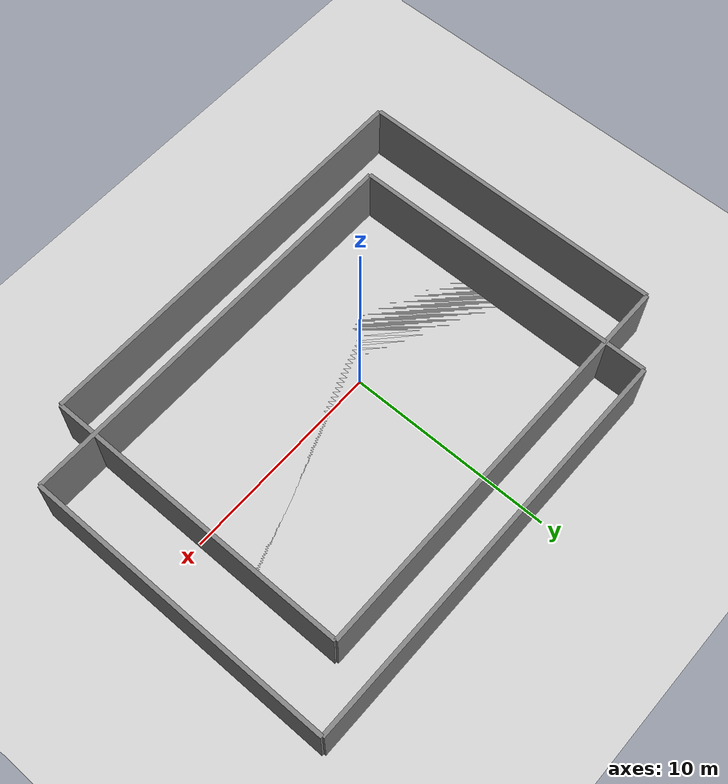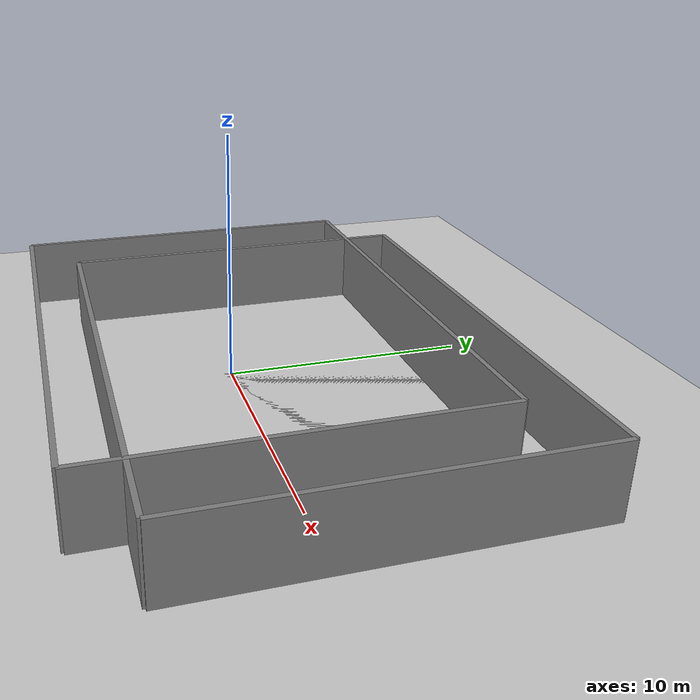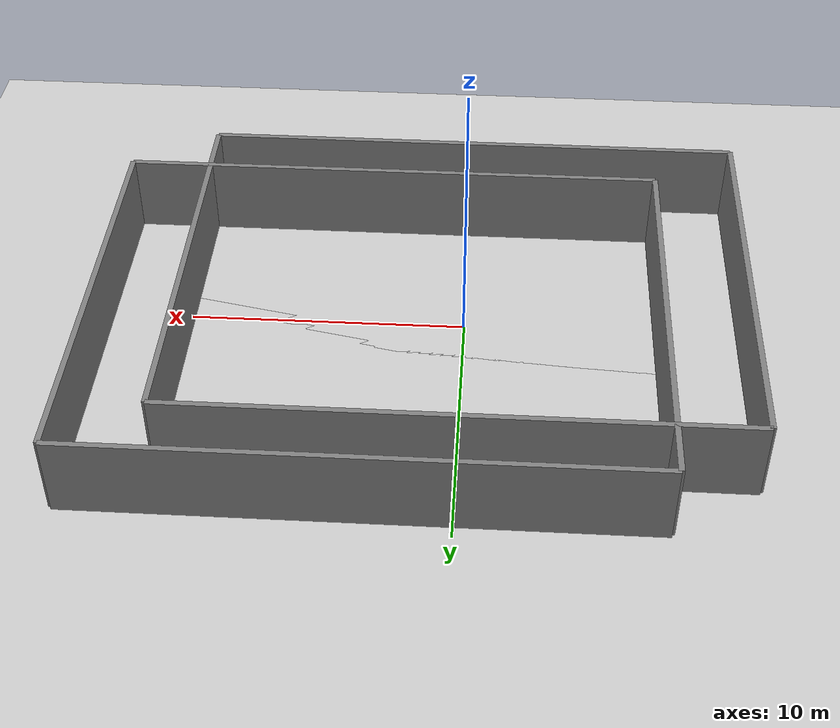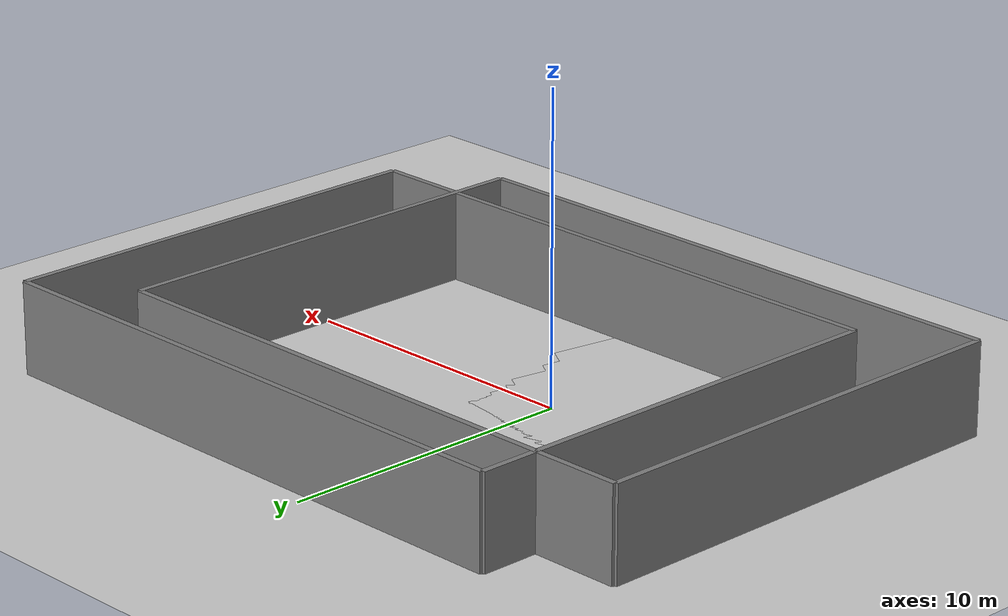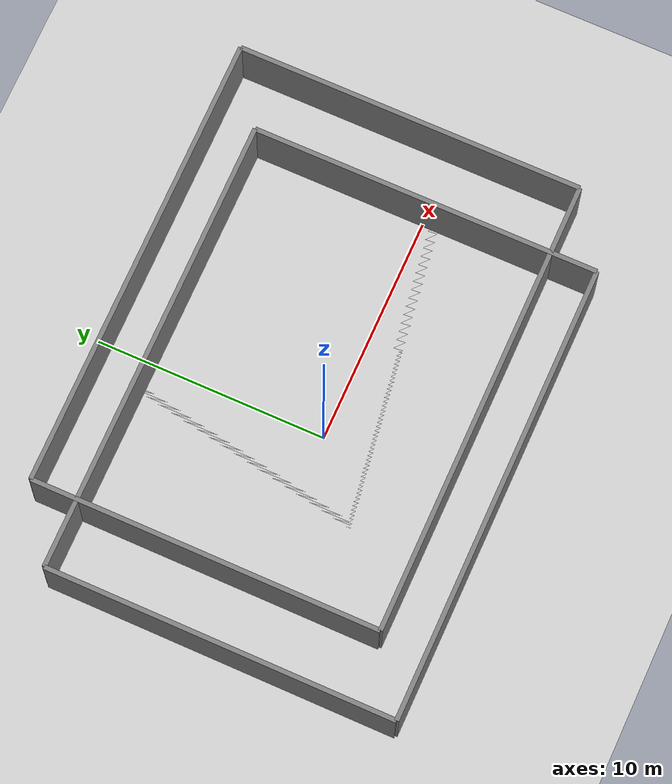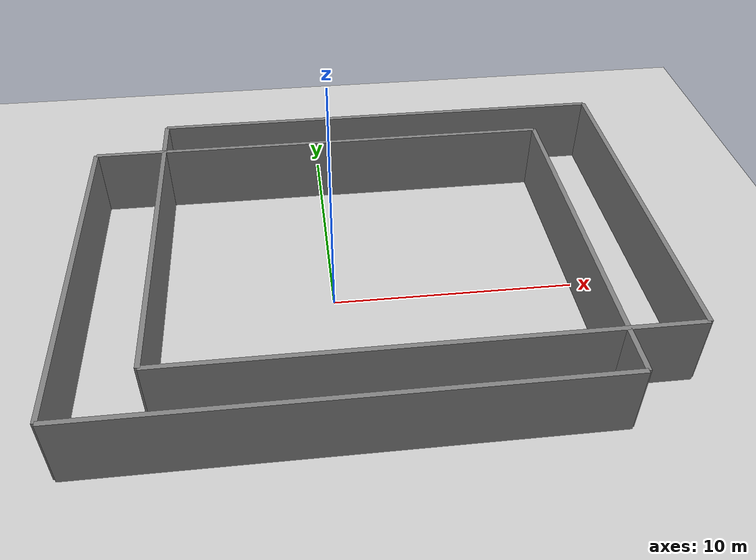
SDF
<?xml version="1.0" ?>
<sdf version="1.8">
  <world name="warehouse_world">
    <physics name="1ms" type="ignored">
      <max_step_size>0.001</max_step_size>
      <real_time_factor>1.0</real_time_factor>
    </physics>

    <plugin filename="libignition-gazebo-physics-system.so" name="ignition::gazebo::systems::Physics"></plugin>
    <plugin filename="libignition-gazebo-user-commands-system.so" name="ignition::gazebo::systems::UserCommands"></plugin>
    <plugin filename="libignition-gazebo-scene-broadcaster-system.so" name="ignition::gazebo::systems::SceneBroadcaster"></plugin>

    <light type="directional" name="sun">
      <cast_shadows>true</cast_shadows>
      <pose>0 0 10 0 0 0</pose>
      <diffuse>0.8 0.8 0.8 1</diffuse>
      <specular>0.2 0.2 0.2 1</specular>
      <direction>-0.5 0.1 -0.9</direction>
    </light>

    <!-- Include warehouse model with absolute path -->
    <include>
      <uri>file:///ros_ws/install/warehouse_simulation_pkg/share/warehouse_simulation_pkg/models/ignition/warehouse/model.sdf</uri>
      <name>warehouse</name>
      <pose>0 0 0 0 0 0</pose>
    </include>

    <!-- Include shelf_big model with absolute path -->
    <include>
      <uri>file:///ros_ws/install/warehouse_simulation_pkg/share/warehouse_simulation_pkg/models/ignition/shelf_big/model.sdf</uri>
      <name>shelf_big_1</name>
      <pose>3 2 0 0 0 0</pose>
    </include>

    <!-- Ground plane -->
    <model name="ground_plane">
      <static>true</static>
      <link name="link">
        <collision name="collision">
          <geometry>
            <plane>
              <normal>0 0 1</normal>
              <size>100 100</size>
            </plane>
          </geometry>
        </collision>
        <visual name="visual">
          <geometry>
            <plane>
              <normal>0 0 1</normal>
              <size>100 100</size>
            </plane>
          </geometry>
          <material>
            <ambient>0.8 0.8 0.8 1</ambient>
            <diffuse>0.8 0.8 0.8 1</diffuse>
            <specular>0.8 0.8 0.8 1</specular>
          </material>
        </visual>
      </link>
    </model>
  </world>
</sdf>

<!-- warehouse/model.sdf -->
<sdf version="1.6">
  <model name="warehouse">
    <static>true</static>

    <!-- Main floor -->
    <link name="floor">
      <collision name="floor_collision">
        <geometry>
          <box>
            <size>20 15 0.1</size>
          </box>
        </geometry>
      </collision>
      <visual name="floor_visual">
        <geometry>
          <box>
            <size>20 15 0.1</size>
          </box>
        </geometry>
        <material>
          <ambient>0.8 0.8 0.8 1</ambient>
          <diffuse>0.8 0.8 0.8 1</diffuse>
        </material>
      </visual>
    </link>

    <!-- Wall 1 -->
    <link name="wall1">
      <pose>10 0 1.5 0 0 0</pose>
      <collision name="wall1_collision">
        <geometry>
          <box>
            <size>0.2 15 3</size>
          </box>
        </geometry>
      </collision>
      <visual name="wall1_visual">
        <geometry>
          <box>
            <size>0.2 15 3</size>
          </box>
        </geometry>
        <material>
          <ambient>0.5 0.5 0.5 1</ambient>
          <diffuse>0.5 0.5 0.5 1</diffuse>
        </material>
      </visual>
    </link>

    <!-- Wall 2 -->
    <link name="wall2">
      <pose>-10 0 1.5 0 0 0</pose>
      <collision name="wall2_collision">
        <geometry>
          <box>
            <size>0.2 15 3</size>
          </box>
        </geometry>
      </collision>
      <visual name="wall2_visual">
        <geometry>
          <box>
            <size>0.2 15 3</size>
          </box>
        </geometry>
        <material>
          <ambient>0.5 0.5 0.5 1</ambient>
          <diffuse>0.5 0.5 0.5 1</diffuse>
        </material>
      </visual>
    </link>

    <!-- Wall 3 -->
    <link name="wall3">
      <pose>0 7.5 1.5 0 0 0</pose>
      <collision name="wall3_collision">
        <geometry>
          <box>
            <size>20 0.2 3</size>
          </box>
        </geometry>
      </collision>
      <visual name="wall3_visual">
        <geometry>
          <box>
            <size>20 0.2 3</size>
          </box>
        </geometry>
        <material>
          <ambient>0.5 0.5 0.5 1</ambient>
          <diffuse>0.5 0.5 0.5 1</diffuse>
        </material>
      </visual>
    </link>

    <!-- Wall 4 -->
    <link name="wall4">
      <pose>0 -7.5 1.5 0 0 0</pose>
      <collision name="wall4_collision">
        <geometry>
          <box>
            <size>20 0.2 3</size>
          </box>
        </geometry>
      </collision>
      <visual name="wall4_visual">
        <geometry>
          <box>
            <size>20 0.2 3</size>
          </box>
        </geometry>
        <material>
          <ambient>0.5 0.5 0.5 1</ambient>
          <diffuse>0.5 0.5 0.5 1</diffuse>
        </material>
      </visual>
    </link>
  </model>
</sdf>
